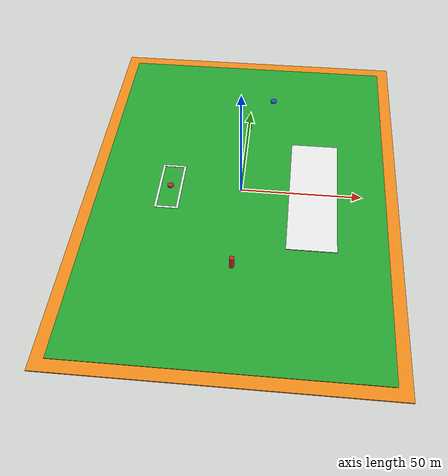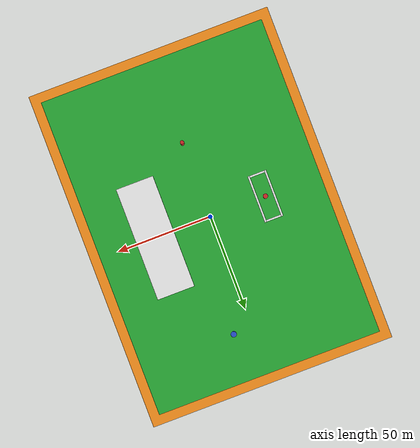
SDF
<sdf version="1.6">
 <world name="default">
  <light name="sun" type="directional">
   <pose>0 0 10 0 -0 0</pose>
   <diffuse>0.8 0.8 0.8 1</diffuse>
   <specular>0.2 0.2 0.2 1</specular>
   <attenuation>
    <range>1000</range>
    <constant>0.9</constant>
    <linear>0.01</linear>
    <quadratic>0.001</quadratic>
   </attenuation>
   <direction>-0.5 0.1 -0.9</direction>
  </light>
  <gravity>0 0 -9.8</gravity>
  <magnetic_field>6e-06 2.3e-05 -4.2e-05</magnetic_field>
  <atmosphere type="adiabatic"/>
  <physics name="default_physics" default="0" type="ode">
   <max_step_size>0.001</max_step_size>
   <real_time_factor>1</real_time_factor>
   <real_time_update_rate>1000</real_time_update_rate>
  </physics>
  <scene><ambient>0.4 0.4 0.4 1</ambient><background>0.7 0.7 0.7 1</background><shadows>1</shadows></scene>
  <spherical_coordinates>
   <surface_model>EARTH_WGS84</surface_model>
   <latitude_deg>0</latitude_deg>
   <longitude_deg>0</longitude_deg>
   <elevation>0</elevation>
   <heading_deg>0</heading_deg>
  </spherical_coordinates>
  <model name="Column">
   <link name="link">
    <inertial>
     <mass>3.14159</mass>
     <inertia>
      <ixx>0.458149</ixx>
      <ixy>0</ixy>
      <ixz>0</ixz>
      <iyy>0.458149</iyy>
      <iyz>0</iyz>
      <izz>0.392699</izz>
     </inertia>
    </inertial>
    <visual name="visual">
     <geometry><cylinder><radius>1</radius><length>5</length></cylinder></geometry>
     <material>
      <script><name>Gazebo/Red</name><uri>/usr/share/gazebo-9/media/materials/scripts/gazebo.material</uri></script>
     </material>
    </visual>
    <collision name="collision">
     <geometry><cylinder><radius>0.5</radius><length>1</length></cylinder></geometry>
     <surface>
      <friction>
       <ode><mu>1</mu><mu2>1</mu2><fdir1>0 0 0</fdir1><slip1>0</slip1><slip2>0</slip2></ode>
       <torsional>
        <coefficient>1</coefficient>
        <patch_radius>0</patch_radius>
        <surface_radius>0</surface_radius>
        <use_patch_radius>1</use_patch_radius>
        <ode><slip>0</slip></ode>
       </torsional>
      </friction>
      <bounce><restitution_coefficient>0</restitution_coefficient><threshold>1e+06</threshold></bounce>
      <contact>
       <collide_without_contact>0</collide_without_contact>
       <collide_without_contact_bitmask>1</collide_without_contact_bitmask>
       <collide_bitmask>1</collide_bitmask>
       <ode>
        <soft_cfm>0</soft_cfm>
        <soft_erp>0.2</soft_erp>
        <kp>1e+13</kp>
        <kd>1</kd>
        <max_vel>0.01</max_vel>
        <min_depth>0</min_depth>
       </ode>
       <bullet>
        <split_impulse>1</split_impulse>
        <split_impulse_penetration_threshold>-0.01</split_impulse_penetration_threshold>
        <soft_cfm>0</soft_cfm>
        <soft_erp>0.2</soft_erp>
        <kp>1e+13</kp>
        <kd>1</kd>
       </bullet>
      </contact>
     </surface>
    </collision>
   </link>
   <static>1</static>
   <pose>0 40 2.25 0 -0 0</pose>
  </model>
  <model name="Column_0">
   <link name="link">
    <inertial>
     <mass>3.14159</mass>
     <inertia>
      <ixx>0.458149</ixx>
      <ixy>0</ixy>
      <ixz>0</ixz>
      <iyy>0.458149</iyy>
      <iyz>0</iyz>
      <izz>0.392699</izz>
     </inertia>
    </inertial>
    <visual name="visual">
     <geometry><cylinder><radius>1</radius><length>5</length></cylinder></geometry>
     <material>
      <script><name>Gazebo/Red</name><uri>/usr/share/gazebo-9/media/materials/scripts/gazebo.material</uri></script>
     </material>
    </visual>
    <collision name="collision">
     <geometry><cylinder><radius>0.5</radius><length>1</length></cylinder></geometry>
     <surface>
      <friction>
       <ode><mu>1</mu><mu2>1</mu2><fdir1>0 0 0</fdir1><slip1>0</slip1><slip2>0</slip2></ode>
       <torsional>
        <coefficient>1</coefficient>
        <patch_radius>0</patch_radius>
        <surface_radius>0</surface_radius>
        <use_patch_radius>1</use_patch_radius>
        <ode><slip>0</slip></ode>
       </torsional>
      </friction>
      <bounce><restitution_coefficient>0</restitution_coefficient><threshold>1e+06</threshold></bounce>
      <contact>
       <collide_without_contact>0</collide_without_contact>
       <collide_without_contact_bitmask>1</collide_without_contact_bitmask>
       <collide_bitmask>1</collide_bitmask>
       <ode>
        <soft_cfm>0</soft_cfm>
        <soft_erp>0.2</soft_erp>
        <kp>1e+13</kp>
        <kd>1</kd>
        <max_vel>0.01</max_vel>
        <min_depth>0</min_depth>
       </ode>
       <bullet>
        <split_impulse>1</split_impulse>
        <split_impulse_penetration_threshold>-0.01</split_impulse_penetration_threshold>
        <soft_cfm>0</soft_cfm>
        <soft_erp>0.2</soft_erp>
        <kp>1e+13</kp>
        <kd>1</kd>
       </bullet>
      </contact>
     </surface>
    </collision>
   </link>
   <static>1</static>
   <pose>0 -40 2.25 0 -0 0</pose>
  </model>
  <model name="Flight_Area">
   <link name="link">
    <inertial>
     <mass>1</mass>
     <inertia>
      <ixx>0.166667</ixx>
      <ixy>0</ixy>
      <ixz>0</ixz>
      <iyy>0.166667</iyy>
      <iyz>0</iyz>
      <izz>0.166667</izz>
     </inertia>
    </inertial>
    <gravity>0</gravity>
    <visual name="visual">
     <geometry><box><size>120 170 0.5</size></box></geometry>
     <material>
      <script>
       <name>Gazebo/Green</name>
       <uri>/usr/share/gazebo-9/media/materials/scripts/gazebo.material</uri>
      </script>
     </material>
    </visual>
    <collision name="collision">
     <geometry><box><size>120 170 0.5</size></box></geometry>
     <surface>
      <friction>
       <ode><mu>1</mu><mu2>1</mu2><fdir1>0 0 0</fdir1><slip1>0</slip1><slip2>0</slip2></ode>
       <torsional>
        <coefficient>1</coefficient>
        <patch_radius>0</patch_radius>
        <surface_radius>0</surface_radius>
        <use_patch_radius>1</use_patch_radius>
        <ode><slip>0</slip></ode>
       </torsional>
      </friction>
      <bounce><restitution_coefficient>0</restitution_coefficient><threshold>1e+06</threshold></bounce>
      <contact>
       <collide_without_contact>0</collide_without_contact>
       <collide_without_contact_bitmask>1</collide_without_contact_bitmask>
       <collide_bitmask>1</collide_bitmask>
       <ode>
        <soft_cfm>0</soft_cfm>
        <soft_erp>0.2</soft_erp>
        <kp>1e+13</kp>
        <kd>1</kd>
        <max_vel>0.01</max_vel>
        <min_depth>0</min_depth>
       </ode>
       <bullet>
        <split_impulse>1</split_impulse>
        <split_impulse_penetration_threshold>-0.01</split_impulse_penetration_threshold>
        <soft_cfm>0</soft_cfm>
        <soft_erp>0.2</soft_erp>
        <kp>1e+13</kp>
        <kd>1</kd>
       </bullet>
      </contact>
     </surface>
    </collision>
   </link>
   <static>1</static>
   <pose>0 0 -0.5 0 -0 0</pose>
  </model>
  <model name="Tampon_Area">
   <link name="link">
    <inertial>
     <mass>1</mass>
     <inertia>
      <ixx>0.166667</ixx>
      <ixy>0</ixy>
      <ixz>0</ixz>
      <iyy>0.166667</iyy>
      <iyz>0</iyz>
      <izz>0.166667</izz>
     </inertia>
    </inertial>
    <visual name="visual">
     <geometry><box><size>130 180 0.5</size></box></geometry>
     <material>
      <script>
       <name>Gazebo/Orange</name>
       <uri>/usr/share/gazebo-9/media/materials/scripts/gazebo.material</uri>
      </script>
     </material>
    </visual>
    <collision name="collision">
     <geometry><box><size>130 180 0.5</size></box></geometry>
     <surface>
      <friction>
       <ode><mu>1</mu><mu2>1</mu2><fdir1>0 0 0</fdir1><slip1>0</slip1><slip2>0</slip2></ode>
       <torsional>
        <coefficient>1</coefficient>
        <patch_radius>0</patch_radius>
        <surface_radius>0</surface_radius>
        <use_patch_radius>1</use_patch_radius>
        <ode><slip>0</slip></ode>
       </torsional>
      </friction>
      <bounce><restitution_coefficient>0</restitution_coefficient><threshold>1e+06</threshold></bounce>
      <contact>
       <collide_without_contact>0</collide_without_contact>
       <collide_without_contact_bitmask>1</collide_without_contact_bitmask>
       <collide_bitmask>1</collide_bitmask>
       <ode>
        <soft_cfm>0</soft_cfm>
        <soft_erp>0.2</soft_erp>
        <kp>1e+13</kp>
        <kd>1</kd>
        <max_vel>0.01</max_vel>
        <min_depth>0</min_depth>
       </ode>
       <bullet>
        <split_impulse>1</split_impulse>
        <split_impulse_penetration_threshold>-0.01</split_impulse_penetration_threshold>
        <soft_cfm>0</soft_cfm>
        <soft_erp>0.2</soft_erp>
        <kp>1e+13</kp>
        <kd>1</kd>
       </bullet>
      </contact>
     </surface>
    </collision>
   </link>
   <static>1</static>
   <pose>0 0 -0.75 0 -0 0</pose>
  </model>
  <model name="Target">
   <link name="link">
    <inertial>
     <mass>1</mass>
     <inertia><ixx>0.145833</ixx><ixy>0</ixy><ixz>0</ixz><iyy>0.145833</iyy><iyz>0</iyz><izz>0.125</izz></inertia>
    </inertial>
    <visual name="visual">
     <geometry><cylinder><radius>1.25</radius><length>1</length></cylinder></geometry>
     <material>
      <script><name>Gazebo/Red</name><uri>file://media/materials/scripts/gazebo.material</uri></script>
      <shader type="pixel"><normal_map>__default__</normal_map></shader>
      <ambient>1 0 0 1</ambient>
      <diffuse>1 0 0 1</diffuse>
      <specular>0.1 0.1 0.1 1</specular>
      <emissive>0 0 0 1</emissive>
     </material>
    </visual>
    <collision name="collision">
     <geometry><cylinder><radius>0.5</radius><length>1</length></cylinder></geometry>
     <surface>
      <friction>
       <ode><mu>1</mu><mu2>1</mu2><fdir1>0 0 0</fdir1><slip1>0</slip1><slip2>0</slip2></ode>
       <torsional>
        <coefficient>1</coefficient>
        <patch_radius>0</patch_radius>
        <surface_radius>0</surface_radius>
        <use_patch_radius>1</use_patch_radius>
        <ode><slip>0</slip></ode>
       </torsional>
      </friction>
      <bounce><restitution_coefficient>0</restitution_coefficient><threshold>1e+06</threshold></bounce>
      <contact>
       <collide_without_contact>0</collide_without_contact>
       <collide_without_contact_bitmask>1</collide_without_contact_bitmask>
       <collide_bitmask>1</collide_bitmask>
       <ode>
        <soft_cfm>0</soft_cfm>
        <soft_erp>0.2</soft_erp>
        <kp>1e+13</kp>
        <kd>1</kd>
        <max_vel>0.01</max_vel>
        <min_depth>0</min_depth>
       </ode>
       <bullet>
        <split_impulse>1</split_impulse>
        <split_impulse_penetration_threshold>-0.01</split_impulse_penetration_threshold>
        <soft_cfm>0</soft_cfm>
        <soft_erp>0.2</soft_erp>
        <kp>1e+13</kp>
        <kd>1</kd>
       </bullet>
      </contact>
     </surface>
    </collision>
   </link>
   <static>1</static>
   <pose>-30 0 0 0 -0 0</pose>
  </model>
  <model name="Target_Area">
   <link name="link_1">
    <inertial>
     <mass>1</mass>
     <inertia>
      <ixx>0.166667</ixx>
      <ixy>0</ixy>
      <ixz>0</ixz>
      <iyy>0.166667</iyy>
      <iyz>0</iyz>
      <izz>0.166667</izz>
     </inertia>
    </inertial>
    <pose>-0.009654 -11.9946 0 0 -0 0</pose>
    <visual name="visual">
     <geometry><box><size>10 1 0.49</size></box></geometry>
     <material>
      <lighting>1</lighting>
      <script>
       <uri>/usr/share/gazebo-9/media/materials/scripts/gazebo.material</uri>
       <name>Gazebo/White</name>
      </script>
      <shader type="pixel"/>
     </material>
    </visual>
    <collision name="collision">
     <geometry><box><size>10 1 0.5</size></box></geometry>
     <surface>
      <friction>
       <ode><mu>1</mu><mu2>1</mu2><fdir1>0 0 0</fdir1><slip1>0</slip1><slip2>0</slip2></ode>
       <torsional>
        <coefficient>1</coefficient>
        <patch_radius>0</patch_radius>
        <surface_radius>0</surface_radius>
        <use_patch_radius>1</use_patch_radius>
        <ode><slip>0</slip></ode>
       </torsional>
      </friction>
      <bounce><restitution_coefficient>0</restitution_coefficient><threshold>1e+06</threshold></bounce>
      <contact>
       <collide_without_contact>0</collide_without_contact>
       <collide_without_contact_bitmask>1</collide_without_contact_bitmask>
       <collide_bitmask>1</collide_bitmask>
       <ode>
        <soft_cfm>0</soft_cfm>
        <soft_erp>0.2</soft_erp>
        <kp>1e+13</kp>
        <kd>1</kd>
        <max_vel>0.01</max_vel>
        <min_depth>0</min_depth>
       </ode>
       <bullet>
        <split_impulse>1</split_impulse>
        <split_impulse_penetration_threshold>-0.01</split_impulse_penetration_threshold>
        <soft_cfm>0</soft_cfm>
        <soft_erp>0.2</soft_erp>
        <kp>1e+13</kp>
        <kd>1</kd>
       </bullet>
      </contact>
     </surface>
    </collision>
   </link>
   <link name="link_1_clone">
    <inertial>
     <mass>1</mass>
     <inertia>
      <ixx>0.166667</ixx>
      <ixy>0</ixy>
      <ixz>0</ixz>
      <iyy>0.166667</iyy>
      <iyz>0</iyz>
      <izz>0.166667</izz>
     </inertia>
    </inertial>
    <pose>-0.006058 11.9986 0 0 -0 0</pose>
    <visual name="visual">
     <geometry><box><size>10 1 0.49</size></box></geometry>
     <material>
      <lighting>1</lighting>
      <script>
       <uri>/usr/share/gazebo-9/media/materials/scripts/gazebo.material</uri>
       <name>Gazebo/White</name>
      </script>
      <shader type="pixel"/>
     </material>
    </visual>
    <collision name="collision">
     <geometry><box><size>10 1 0.5</size></box></geometry>
     <surface>
      <friction>
       <ode><mu>1</mu><mu2>1</mu2><fdir1>0 0 0</fdir1><slip1>0</slip1><slip2>0</slip2></ode>
       <torsional>
        <coefficient>1</coefficient>
        <patch_radius>0</patch_radius>
        <surface_radius>0</surface_radius>
        <use_patch_radius>1</use_patch_radius>
        <ode><slip>0</slip></ode>
       </torsional>
      </friction>
      <bounce><restitution_coefficient>0</restitution_coefficient><threshold>1e+06</threshold></bounce>
      <contact>
       <collide_without_contact>0</collide_without_contact>
       <collide_without_contact_bitmask>1</collide_without_contact_bitmask>
       <collide_bitmask>1</collide_bitmask>
       <ode>
        <soft_cfm>0</soft_cfm>
        <soft_erp>0.2</soft_erp>
        <kp>1e+13</kp>
        <kd>1</kd>
        <max_vel>0.01</max_vel>
        <min_depth>0</min_depth>
       </ode>
       <bullet>
        <split_impulse>1</split_impulse>
        <split_impulse_penetration_threshold>-0.01</split_impulse_penetration_threshold>
        <soft_cfm>0</soft_cfm>
        <soft_erp>0.2</soft_erp>
        <kp>1e+13</kp>
        <kd>1</kd>
       </bullet>
      </contact>
     </surface>
    </collision>
   </link>
   <link name="link_2">
    <inertial>
     <mass>1</mass>
     <inertia>
      <ixx>0.166667</ixx>
      <ixy>0</ixy>
      <ixz>0</ixz>
      <iyy>0.166667</iyy>
      <iyz>0</iyz>
      <izz>0.166667</izz>
     </inertia>
    </inertial>
    <pose>-4.48987 -0.001349 0 0 -0 0</pose>
    <visual name="visual">
     <geometry><box><size>1 25 0.5</size></box></geometry>
     <material>
      <lighting>1</lighting>
      <script>
       <uri>/usr/share/gazebo-9/media/materials/scripts/gazebo.material</uri>
       <name>Gazebo/White</name>
      </script>
      <shader type="pixel"/>
     </material>
    </visual>
    <collision name="collision">
     <geometry><box><size>1 10 0.5</size></box></geometry>
     <surface>
      <friction>
       <ode><mu>1</mu><mu2>1</mu2><fdir1>0 0 0</fdir1><slip1>0</slip1><slip2>0</slip2></ode>
       <torsional>
        <coefficient>1</coefficient>
        <patch_radius>0</patch_radius>
        <surface_radius>0</surface_radius>
        <use_patch_radius>1</use_patch_radius>
        <ode><slip>0</slip></ode>
       </torsional>
      </friction>
      <bounce><restitution_coefficient>0</restitution_coefficient><threshold>1e+06</threshold></bounce>
      <contact>
       <collide_without_contact>0</collide_without_contact>
       <collide_without_contact_bitmask>1</collide_without_contact_bitmask>
       <collide_bitmask>1</collide_bitmask>
       <ode>
        <soft_cfm>0</soft_cfm>
        <soft_erp>0.2</soft_erp>
        <kp>1e+13</kp>
        <kd>1</kd>
        <max_vel>0.01</max_vel>
        <min_depth>0</min_depth>
       </ode>
       <bullet>
        <split_impulse>1</split_impulse>
        <split_impulse_penetration_threshold>-0.01</split_impulse_penetration_threshold>
        <soft_cfm>0</soft_cfm>
        <soft_erp>0.2</soft_erp>
        <kp>1e+13</kp>
        <kd>1</kd>
       </bullet>
      </contact>
     </surface>
    </collision>
   </link>
   <link name="link_2_clone">
    <inertial>
     <mass>1</mass>
     <inertia>
      <ixx>0.166667</ixx>
      <ixy>0</ixy>
      <ixz>0</ixz>
      <iyy>0.166667</iyy>
      <iyz>0</iyz>
      <izz>0.166667</izz>
     </inertia>
    </inertial>
    <pose>4.50573 -0.002745 0 0 -0 0</pose>
    <visual name="visual">
     <geometry><box><size>1 25 0.5</size></box></geometry>
     <material>
      <lighting>1</lighting>
      <script>
       <uri>/usr/share/gazebo-9/media/materials/scripts/gazebo.material</uri>
       <name>Gazebo/White</name>
      </script>
      <shader type="pixel"/>
     </material>
    </visual>
    <collision name="collision">
     <geometry><box><size>1 10 0.5</size></box></geometry>
     <surface>
      <friction>
       <ode><mu>1</mu><mu2>1</mu2><fdir1>0 0 0</fdir1><slip1>0</slip1><slip2>0</slip2></ode>
       <torsional>
        <coefficient>1</coefficient>
        <patch_radius>0</patch_radius>
        <surface_radius>0</surface_radius>
        <use_patch_radius>1</use_patch_radius>
        <ode><slip>0</slip></ode>
       </torsional>
      </friction>
      <bounce><restitution_coefficient>0</restitution_coefficient><threshold>1e+06</threshold></bounce>
      <contact>
       <collide_without_contact>0</collide_without_contact>
       <collide_without_contact_bitmask>1</collide_without_contact_bitmask>
       <collide_bitmask>1</collide_bitmask>
       <ode>
        <soft_cfm>0</soft_cfm>
        <soft_erp>0.2</soft_erp>
        <kp>1e+13</kp>
        <kd>1</kd>
        <max_vel>0.01</max_vel>
        <min_depth>0</min_depth>
       </ode>
       <bullet>
        <split_impulse>1</split_impulse>
        <split_impulse_penetration_threshold>-0.01</split_impulse_penetration_threshold>
        <soft_cfm>0</soft_cfm>
        <soft_erp>0.2</soft_erp>
        <kp>1e+13</kp>
        <kd>1</kd>
       </bullet>
      </contact>
     </surface>
    </collision>
   </link>
   <static>1</static>
   <pose>-30 0 -0.45 0 -0 0</pose>
  </model>
  <model name="Pool">
   <link name="link">
    <inertial>
     <mass>1</mass>
     <inertia><ixx>0.145833</ixx><ixy>0</ixy><ixz>0</ixz><iyy>0.145833</iyy><iyz>0</iyz><izz>0.125</izz></inertia>
    </inertial>
    <visual name="visual">
     <geometry><cylinder><radius>1.5</radius><length>0.7</length></cylinder></geometry>
     <material>
      <script>
       <name>Gazebo/Blue</name>
       <uri>/usr/share/gazebo-9/media/materials/scripts/gazebo.material</uri>
      </script>
     </material>
    </visual>
    <collision name="collision">
     <geometry><cylinder><radius>1.5</radius><length>0.7</length></cylinder></geometry>
     <surface>
      <friction>
       <ode><mu>1</mu><mu2>1</mu2><fdir1>0 0 0</fdir1><slip1>0</slip1><slip2>0</slip2></ode>
       <torsional>
        <coefficient>1</coefficient>
        <patch_radius>0</patch_radius>
        <surface_radius>0</surface_radius>
        <use_patch_radius>1</use_patch_radius>
        <ode><slip>0</slip></ode>
       </torsional>
      </friction>
      <bounce><restitution_coefficient>0</restitution_coefficient><threshold>1e+06</threshold></bounce>
      <contact>
       <collide_without_contact>0</collide_without_contact>
       <collide_without_contact_bitmask>1</collide_without_contact_bitmask>
       <collide_bitmask>1</collide_bitmask>
       <ode>
        <soft_cfm>0</soft_cfm>
        <soft_erp>0.2</soft_erp>
        <kp>1e+13</kp>
        <kd>1</kd>
        <max_vel>0.01</max_vel>
        <min_depth>0</min_depth>
       </ode>
       <bullet>
        <split_impulse>1</split_impulse>
        <split_impulse_penetration_threshold>-0.01</split_impulse_penetration_threshold>
        <soft_cfm>0</soft_cfm>
        <soft_erp>0.2</soft_erp>
        <kp>1e+13</kp>
        <kd>1</kd>
       </bullet>
      </contact>
     </surface>
    </collision>
   </link>
   <static>1</static>
   <pose>10 60 0 0 -0 0</pose>
  </model>
  <model name="Pist_0">
   <link name="link">
    <inertial>
     <mass>1</mass>
     <inertia>
      <ixx>0.166667</ixx>
      <ixy>0</ixy>
      <ixz>0</ixz>
      <iyy>0.166667</iyy>
      <iyz>0</iyz>
      <izz>0.166667</izz>
     </inertia>
    </inertial>
    <visual name="visual">
     <geometry><box><size>20 60 1</size></box></geometry>
     <material>
      <script>
       <name>Gazebo/White</name>
       <uri>/usr/share//usr/share/gazebo-9/media/materials/scripts/gazebo.material</uri>
      </script>
     </material>
    </visual>
    <collision name="collision">
     <geometry><box><size>20 60 1</size></box></geometry>
     <surface>
      <friction>
       <ode><mu>1</mu><mu2>1</mu2><fdir1>0 0 0</fdir1><slip1>0</slip1><slip2>0</slip2></ode>
       <torsional>
        <coefficient>1</coefficient>
        <patch_radius>0</patch_radius>
        <surface_radius>0</surface_radius>
        <use_patch_radius>1</use_patch_radius>
        <ode><slip>0</slip></ode>
       </torsional>
      </friction>
      <bounce><restitution_coefficient>0</restitution_coefficient><threshold>1e+06</threshold></bounce>
      <contact>
       <collide_without_contact>0</collide_without_contact>
       <collide_without_contact_bitmask>1</collide_without_contact_bitmask>
       <collide_bitmask>1</collide_bitmask>
       <ode>
        <soft_cfm>0</soft_cfm>
        <soft_erp>0.2</soft_erp>
        <kp>1e+13</kp>
        <kd>1</kd>
        <max_vel>0.01</max_vel>
        <min_depth>0</min_depth>
       </ode>
       <bullet>
        <split_impulse>1</split_impulse>
        <split_impulse_penetration_threshold>-0.01</split_impulse_penetration_threshold>
        <soft_cfm>0</soft_cfm>
        <soft_erp>0.2</soft_erp>
        <kp>1e+13</kp>
        <kd>1</kd>
       </bullet>
      </contact>
     </surface>
    </collision>
   </link>
   <link name="line">
    <inertial>
     <mass>1</mass>
     <inertia>
      <ixx>0.166667</ixx>
      <ixy>0</ixy>
      <ixz>0</ixz>
      <iyy>0.166667</iyy>
      <iyz>0</iyz>
      <izz>0.166667</izz>
     </inertia>
    </inertial>
    <pose>0 0 0.02 0 -0 0</pose>
    <visual name="visual">
     <geometry><box><size>20 1 1</size></box></geometry>
     <material>
      <lighting>1</lighting>
      <script>
       <uri>/usr/share/gazebo-9/media/materials/scripts/gazebo.material</uri>
       <name>Gazebo/Black</name>
      </script>
     </material>
    </visual>
    <collision name="collision">
     <geometry><box><size>20 1 1</size></box></geometry>
     <surface>
      <friction>
       <ode><mu>1</mu><mu2>1</mu2><fdir1>0 0 0</fdir1><slip1>0</slip1><slip2>0</slip2></ode>
       <torsional>
        <coefficient>1</coefficient>
        <patch_radius>0</patch_radius>
        <surface_radius>0</surface_radius>
        <use_patch_radius>1</use_patch_radius>
        <ode><slip>0</slip></ode>
       </torsional>
      </friction>
      <bounce><restitution_coefficient>0</restitution_coefficient><threshold>1e+06</threshold></bounce>
      <contact>
       <collide_without_contact>0</collide_without_contact>
       <collide_without_contact_bitmask>1</collide_without_contact_bitmask>
       <collide_bitmask>1</collide_bitmask>
       <ode>
        <soft_cfm>0</soft_cfm>
        <soft_erp>0.2</soft_erp>
        <kp>1e+13</kp>
        <kd>1</kd>
        <max_vel>0.01</max_vel>
        <min_depth>0</min_depth>
       </ode>
       <bullet>
        <split_impulse>1</split_impulse>
        <split_impulse_penetration_threshold>-0.01</split_impulse_penetration_threshold>
        <soft_cfm>0</soft_cfm>
        <soft_erp>0.2</soft_erp>
        <kp>1e+13</kp>
        <kd>1</kd>
       </bullet>
      </contact>
     </surface>
    </collision>
   </link>
   <static>1</static>
   <pose>30 0 -0.5 0 -0 0</pose>
  </model>
 </world>
</sdf>
